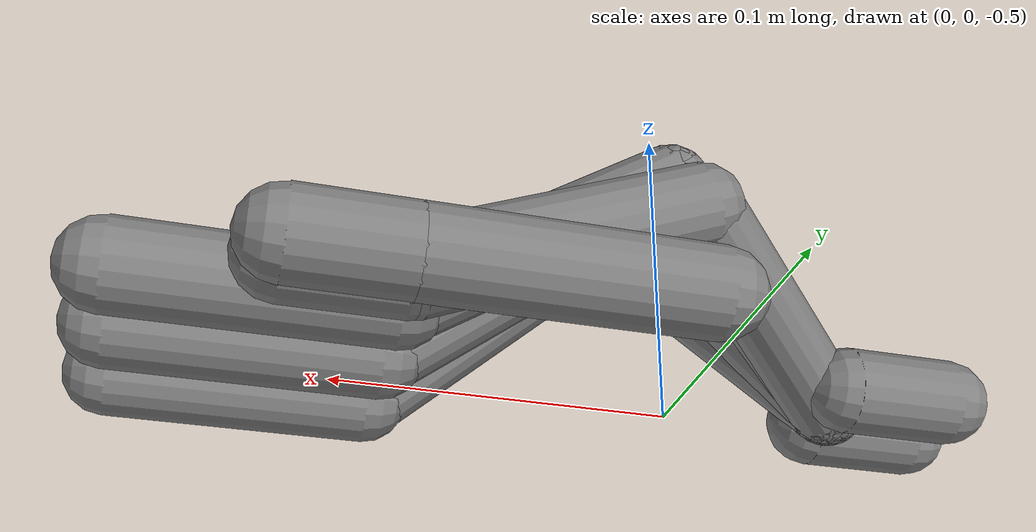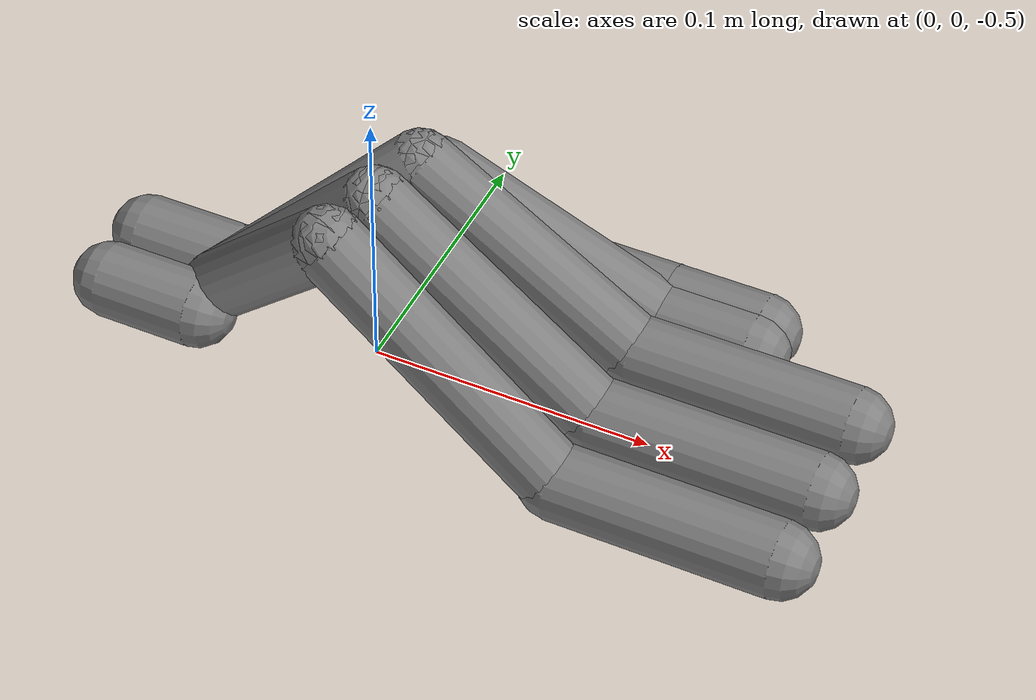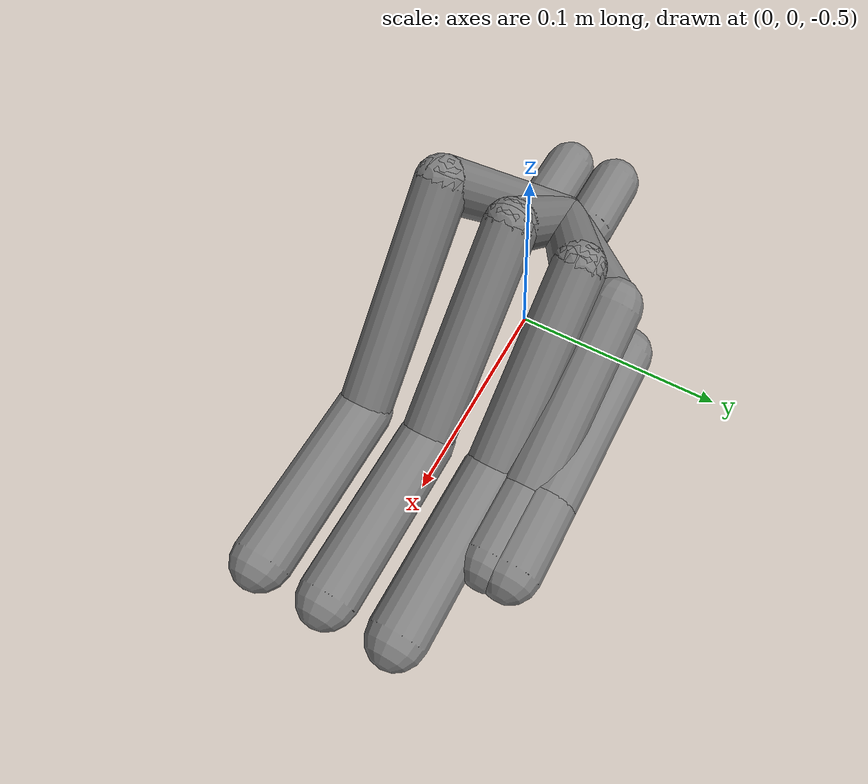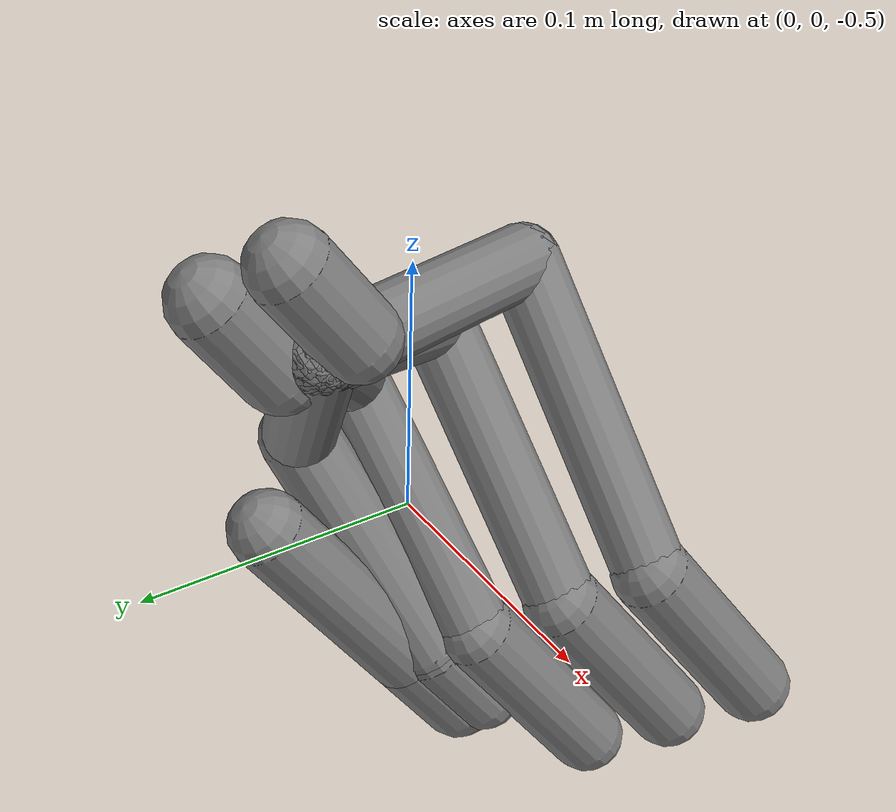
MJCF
<mujoco model="humanoid">

  <statistic extent="2" center="0 0 1"/>

  <option timestep="0.00555"/>

  <default>
    <motor ctrlrange="-1 1" ctrllimited="true"/>
    <default class="body">
      <geom type="capsule" condim="1" friction="0 0 0.0" solimp=".9 .99 .003" solref=".015 1"/>
      <joint type="hinge" damping="0.1" stiffness="5" armature=".007" limited="true" solimplimit="0 .99 .01"/>
      <site size=".04" group="3"/>
      <default class="force-torque">
        <site type="box" size=".01 .01 .02" rgba="1 0 0 1" />
      </default>
      <default class="touch">
        <site type="capsule" rgba="0 0 1 .3"/>
      </default>
    </default>
  </default>

  <worldbody>
      <body name="L_Ankle" pos="-0.0374 -0.0148 -0.4269">
            <body name="L_Toe" pos="0.122 0.0411 -0.0603">
              <geom size="0.013179" type="capsule" fromto="0.0 0 0 0.07695195823907852 0 0" contype="0" conaffinity="1" density="1000"/>
              <geom size="0.013179" type="capsule" fromto="0.0 -0.03248008340597153 0 0.07695195823907852 -0.03248008340597153 0" contype="0" conaffinity="1" density="1000"/>
              <geom size="0.013179" type="capsule" fromto="0.0 -0.06496016681194305 0 0.07695195823907852 -0.06496016681194305 0" contype="0" conaffinity="1" density="1000"/>
            </body>
            <geom size="0.012164" type="capsule" fromto="0.04168612137436867 0.0411 -0.00749766081571579 0.122 0.0411 -0.06030000000000002" contype="0" conaffinity="1" density="1000"/>
            <geom size="0.012164" type="capsule" fromto="0.04168612137436867 0.008619913831353188 0.0021436884999275208 0.122 0.008619913831353188 -0.06030000000000002" contype="0" conaffinity="1" density="1000"/>
            <geom size="0.012164" type="capsule" fromto="0.04168612137436867 -0.02386017143726349 0.011785037815570831 0.122 -0.02386017143726349 -0.06030000000000002" contype="0" conaffinity="1" density="1000"/>
            <geom size="0.012164" type="capsule" fromto="0.04168612137436867 0.0411 -0.00749766081571579 -0.02 0.008619913831353188 -0.06030000000000002" contype="0" conaffinity="1" density="1000"/>
            <geom size="0.012164" type="capsule" fromto="0.04168612137436867 0.008619913831353188 0.0021436884999275208 -0.02 0.008619913831353188 -0.06030000000000002" contype="0" conaffinity="1" density="1000"/>
            <geom size="0.012164" type="capsule" fromto="0.04168612137436867 -0.02386017143726349 0.011785037815570831 -0.02 0.008619913831353188 -0.06030000000000002" contype="0" conaffinity="1" density="1000"/>
            <geom size="0.012164" type="capsule" fromto="0.04 0.058619916439056396 -0.02678035944700241 -0.02 0.008619913831353188 -0.06030000000000002" contype="0" conaffinity="1" density="1000"/>
            <body name="L_Toe_1" pos="0.04 0.05862 -0.02678">
              <geom size="0.013179" type="capsule" fromto="0 0 0 0.08199999999999999 0 -0.03351964056491852" contype="0" conaffinity="1" density="1000"/>
              <geom size="0.013179" type="capsule" fromto="0 0.009913399815559387 -0.03351964056491852 0.08199999999999999 0.009913399815559387 -0.03351964056491852" contype="0" conaffinity="1" density="1000"/>
              <body name="L_Toe_1_1" pos="0.082 0 -0.03352">
                <geom size="0.013179" type="capsule" fromto="0 0 0 0.03378603234887123 0 0" contype="0" conaffinity="1" density="1000"/>
                <geom size="0.013179" type="capsule" fromto="0 0.009913399815559387 0 0.03378603234887123 0.009913399815559387 0" contype="0" conaffinity="1" density="1000"/>
              </body>
            </body>
            <body name="L_Toe_2" pos="-0.02 0.00862 -0.0603">
              <geom size="0.013179" type="capsule" fromto="0 0.013178706169128418 0 -0.034060727804899216 0.013178706169128418 0" contype="0" conaffinity="1" density="1000"/>
              <geom size="0.013179" type="capsule" fromto="0 -0.013178706169128418 0 -0.034060727804899216 -0.013178706169128418 0" contype="0" conaffinity="1" density="1000"/>
            </body>
          </body>
  </worldbody>

</mujoco>
